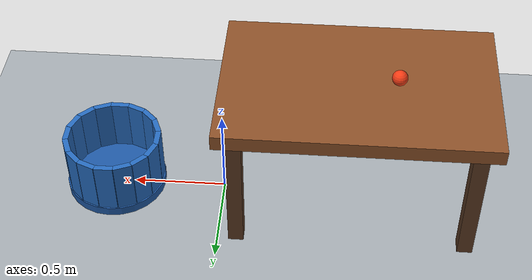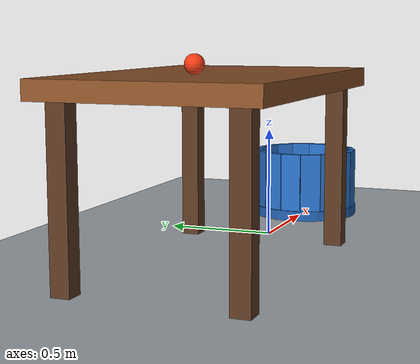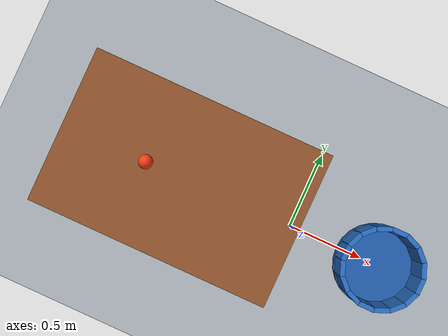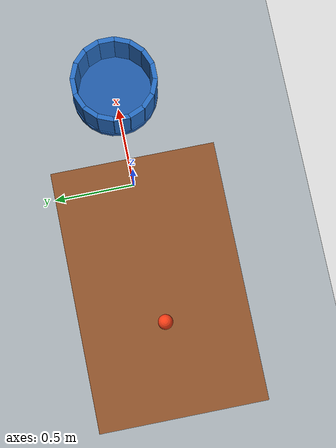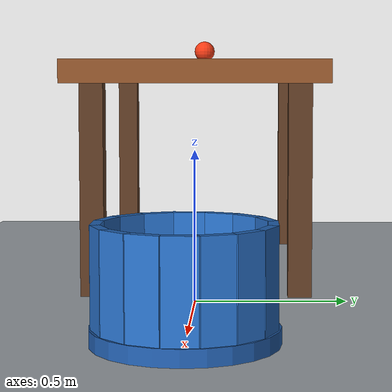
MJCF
<mujoco model="ball_rolls_into_bucket">
  <compiler angle="degree"/>
  <option timestep="0.002" gravity="0 0 -9.81" integrator="implicitfast" cone="elliptic" iterations="100"/>
  <visual>
    <headlight ambient="0.35 0.35 0.35" diffuse="0.65 0.65 0.65" specular="0.2 0.2 0.2"/>
  </visual>

  <worldbody>
    <light name="overhead" pos="0 -1 3" dir="0 0 -1" diffuse="0.8 0.8 0.8"/>
    <camera name="overview" pos="2.4 -3.2 2.2" xyaxes="0.8 0.6 0 -0.3 0.4 0.866"/>

    <geom name="floor" type="plane" pos="0 0 0" size="4 4 0.1" rgba="0.65 0.68 0.70 1" condim="6" friction="1 0.01 0.04"/>

    <!-- The tabletop ends at x = 0 and its upper surface is z = 0.80. -->
    <body name="table" pos="0 0 0">
      <geom name="table_top" type="box" pos="-0.7 0 0.76" size="0.7 0.45 0.04" rgba="0.55 0.32 0.16 1" priority="1" condim="3" friction="0.8 0.001 0.00001" solref="0.008 1" solimp="0.95 0.99 0.001"/>
      <geom name="table_leg_1" type="box" pos="-1.3 -0.35 0.36" size="0.04 0.04 0.36" rgba="0.35 0.22 0.13 1"/>
      <geom name="table_leg_2" type="box" pos="-1.3 0.35 0.36" size="0.04 0.04 0.36" rgba="0.35 0.22 0.13 1"/>
      <geom name="table_leg_3" type="box" pos="-0.1 -0.35 0.36" size="0.04 0.04 0.36" rgba="0.35 0.22 0.13 1"/>
      <geom name="table_leg_4" type="box" pos="-0.1 0.35 0.36" size="0.04 0.04 0.36" rgba="0.35 0.22 0.13 1"/>
    </body>

    <!-- Open, fixed bucket on the floor, centred 0.60 m beyond the table edge. -->
    <!-- Overlapping tangent boxes form its walls; its bottom surface is z = 0.05. -->
    <body name="bucket" pos="0.6 0 0">
      <geom name="bucket_bottom" type="cylinder" pos="0 0 0.025" size="0.27 0.025" rgba="0.12 0.35 0.65 1" priority="2" condim="6" friction="1 0.01 0.04" solref="0.015 1" solimp="0.95 0.99 0.001"/>
      <geom name="bucket_wall_00" type="box" pos="0.245 0 0.195" size="0.015 0.05 0.145" euler="0 0 0" rgba="0.15 0.42 0.75 1" priority="2" condim="6" friction="1 0.01 0.04" solref="0.015 1"/>
      <geom name="bucket_wall_01" type="box" pos="0.226350 0.093758 0.195" size="0.015 0.05 0.145" euler="0 0 22.5" rgba="0.15 0.42 0.75 1" priority="2" condim="6" friction="1 0.01 0.04" solref="0.015 1"/>
      <geom name="bucket_wall_02" type="box" pos="0.173241 0.173241 0.195" size="0.015 0.05 0.145" euler="0 0 45" rgba="0.15 0.42 0.75 1" priority="2" condim="6" friction="1 0.01 0.04" solref="0.015 1"/>
      <geom name="bucket_wall_03" type="box" pos="0.093758 0.226350 0.195" size="0.015 0.05 0.145" euler="0 0 67.5" rgba="0.15 0.42 0.75 1" priority="2" condim="6" friction="1 0.01 0.04" solref="0.015 1"/>
      <geom name="bucket_wall_04" type="box" pos="0 0.245 0.195" size="0.015 0.05 0.145" euler="0 0 90" rgba="0.15 0.42 0.75 1" priority="2" condim="6" friction="1 0.01 0.04" solref="0.015 1"/>
      <geom name="bucket_wall_05" type="box" pos="-0.093758 0.226350 0.195" size="0.015 0.05 0.145" euler="0 0 112.5" rgba="0.15 0.42 0.75 1" priority="2" condim="6" friction="1 0.01 0.04" solref="0.015 1"/>
      <geom name="bucket_wall_06" type="box" pos="-0.173241 0.173241 0.195" size="0.015 0.05 0.145" euler="0 0 135" rgba="0.15 0.42 0.75 1" priority="2" condim="6" friction="1 0.01 0.04" solref="0.015 1"/>
      <geom name="bucket_wall_07" type="box" pos="-0.226350 0.093758 0.195" size="0.015 0.05 0.145" euler="0 0 157.5" rgba="0.15 0.42 0.75 1" priority="2" condim="6" friction="1 0.01 0.04" solref="0.015 1"/>
      <geom name="bucket_wall_08" type="box" pos="-0.245 0 0.195" size="0.015 0.05 0.145" euler="0 0 180" rgba="0.15 0.42 0.75 1" priority="2" condim="6" friction="1 0.01 0.04" solref="0.015 1"/>
      <geom name="bucket_wall_09" type="box" pos="-0.226350 -0.093758 0.195" size="0.015 0.05 0.145" euler="0 0 202.5" rgba="0.15 0.42 0.75 1" priority="2" condim="6" friction="1 0.01 0.04" solref="0.015 1"/>
      <geom name="bucket_wall_10" type="box" pos="-0.173241 -0.173241 0.195" size="0.015 0.05 0.145" euler="0 0 225" rgba="0.15 0.42 0.75 1" priority="2" condim="6" friction="1 0.01 0.04" solref="0.015 1"/>
      <geom name="bucket_wall_11" type="box" pos="-0.093758 -0.226350 0.195" size="0.015 0.05 0.145" euler="0 0 247.5" rgba="0.15 0.42 0.75 1" priority="2" condim="6" friction="1 0.01 0.04" solref="0.015 1"/>
      <geom name="bucket_wall_12" type="box" pos="0 -0.245 0.195" size="0.015 0.05 0.145" euler="0 0 270" rgba="0.15 0.42 0.75 1" priority="2" condim="6" friction="1 0.01 0.04" solref="0.015 1"/>
      <geom name="bucket_wall_13" type="box" pos="0.093758 -0.226350 0.195" size="0.015 0.05 0.145" euler="0 0 292.5" rgba="0.15 0.42 0.75 1" priority="2" condim="6" friction="1 0.01 0.04" solref="0.015 1"/>
      <geom name="bucket_wall_14" type="box" pos="0.173241 -0.173241 0.195" size="0.015 0.05 0.145" euler="0 0 315" rgba="0.15 0.42 0.75 1" priority="2" condim="6" friction="1 0.01 0.04" solref="0.015 1"/>
      <geom name="bucket_wall_15" type="box" pos="0.226350 -0.093758 0.195" size="0.015 0.05 0.145" euler="0 0 337.5" rgba="0.15 0.42 0.75 1" priority="2" condim="6" friction="1 0.01 0.04" solref="0.015 1"/>
    </body>

    <body name="ball" pos="-0.9 0 0.84">
      <freejoint/>
      <geom name="ball" type="sphere" size="0.04" mass="0.08" rgba="0.95 0.23 0.08 1" condim="3" friction="0.8 0.001 0.00001" solref="0.008 1" solimp="0.95 0.99 0.001"/>
    </body>
  </worldbody>

  <!-- v = r*omega gives initial rolling without slipping toward +x. -->
  <keyframe>
    <key name="start" qpos="-0.9 0 0.84 1 0 0 0" qvel="1.5 0 0 0 37.5 0"/>
  </keyframe>
</mujoco>
